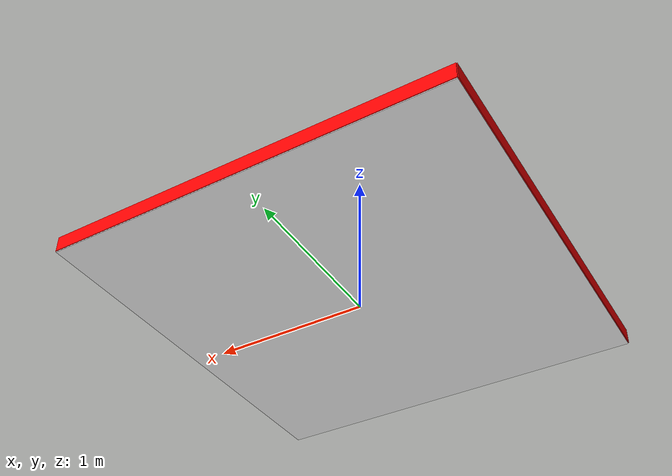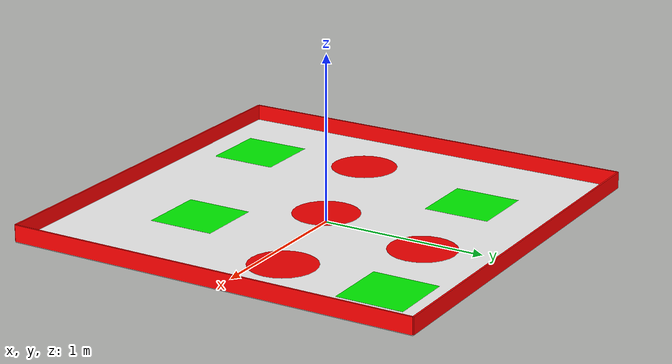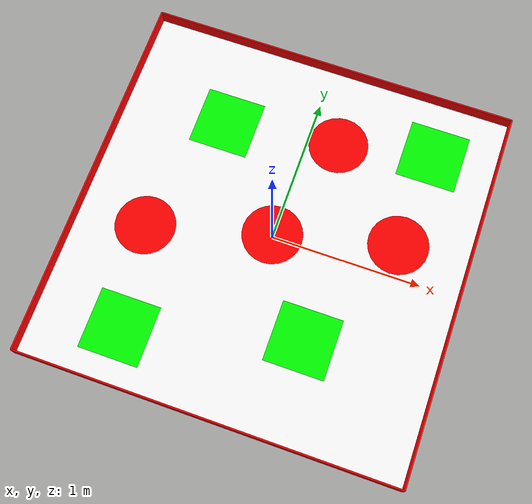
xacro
<?xml version="1.0"?>
<robot name="nav_world"
    xmlns:xacro="http://www.ros.org/wiki/xacro">

    <!-- Define your links and visuals here -->
    <link name="base_link"/>
    <joint name="base__floor" type="fixed">
        <parent link="base_link"/>
        <child link="floor_link"/>
        <origin xyz="0.0 0.0 0.05" rpy="0.0 0.0 0.0"/>
    </joint>

    <link name="floor_link">
        <visual name="">
            <origin xyz="0.0 0.0 0.0" rpy="0.0 0.0 0.0"/>
            <geometry>
                <box size="2.5 2.5 0.01"/>
            </geometry>
            <material name="">
                <color rgba="1.0 1.0 1.0 1.0"/>
            </material>
        </visual>
        <collision>
            <origin xyz="0.0 0.0 0.0" rpy="0.0 0.0 0.0"/>
            <geometry>
                <box size="2.5 2.5 0.01"/>
            </geometry>
        </collision>
        <inertial>
            <mass value="10.0"/>
            <inertia ixx="0.015" iyy="0.0375" izz="0.0375" ixy="0" ixz="0" iyz="0"/>
        </inertial>
    </link>
    <joint name="floor_circle1" type="fixed">
        <parent link="floor_link"/>
        <child link="circle1_link"/>
        <origin xyz="0.0 0.0 0.00499" rpy="0.0 0.0 0.0"/>
    </joint>

    <link name="circle1_link">
        <visual name="">
            <origin xyz="0.0 0.0 0.0" rpy="0.0 0.0 0.0"/>
            <geometry>
                <cylinder radius=".2" length="0.0001"/>
            </geometry>
            <material name="">
                <color rgba="1.0 0.0 0.0 1.0"/>
            </material>
        </visual>
        <collision>
            <origin xyz="0.0 0.0 0.0" rpy="0.0 0.0 0.0"/>
            <geometry>
                <cylinder radius=".2" length="0"/>
            </geometry>
        </collision>
        <inertial>
            <mass value="10.0"/>
            <inertia ixx="0.015" iyy="0.0375" izz="0.0375" ixy="0" ixz="0" iyz="0"/>
        </inertial>
    </link>
    <joint name="floor_circle2" type="fixed">
        <parent link="floor_link"/>
        <child link="circle2_link"/>
        <origin xyz="0.21 0.74 0.00499" rpy="0.0 0.0 0.0"/>
    </joint>

    <link name="circle2_link">
        <visual name="">
            <origin xyz="0.0 0.0 0.0" rpy="0.0 0.0 0.0"/>
            <geometry>
                <cylinder radius=".2" length="0.0001"/>
            </geometry>
            <material name="">
                <color rgba="1.0 0.0 0.0 1.0"/>
            </material>
        </visual>
        <collision>
            <origin xyz="0.0 0.0 0.0" rpy="0.0 0.0 0.0"/>
            <geometry>
                <cylinder radius=".2" length="0"/>
            </geometry>
        </collision>
        <inertial>
            <mass value="10.0"/>
            <inertia ixx="0.015" iyy="0.0375" izz="0.0375" ixy="0" ixz="0" iyz="0"/>
        </inertial>
    </link>
    <joint name="floor_circle3" type="fixed">
        <parent link="floor_link"/>
        <child link="circle3_link"/>
        <origin xyz="0.79 0.2 0.00499" rpy="0.0 0.0 0.0"/>
    </joint>

    <link name="circle3_link">
        <visual name="">
            <origin xyz="0.0 0.0 0.0" rpy="0.0 0.0 0.0"/>
            <geometry>
                <cylinder radius=".2" length="0.0001"/>
            </geometry>
            <material name="">
                <color rgba="1.0 0.0 0.0 1.0"/>
            </material>
        </visual>
        <collision>
            <origin xyz="0.0 0.0 0.0" rpy="0.0 0.0 0.0"/>
            <geometry>
                <cylinder radius=".2" length="0"/>
            </geometry>
        </collision>
        <inertial>
            <mass value="10.0"/>
            <inertia ixx="0.015" iyy="0.0375" izz="0.0375" ixy="0" ixz="0" iyz="0"/>
        </inertial>
    </link>
    <joint name="floor_circle4" type="fixed">
        <parent link="floor_link"/>
        <child link="circle4_link"/>
        <origin xyz="-0.8 -0.21 0.00499" rpy="0.0 0.0 0.0"/>
    </joint>

    <link name="circle4_link">
        <visual name="">
            <origin xyz="0.0 0.0 0.0" rpy="0.0 0.0 0.0"/>
            <geometry>
                <cylinder radius=".2" length="0.0001"/>
            </geometry>
            <material name="">
                <color rgba="1.0 0.0 0.0 1.0"/>
            </material>
            <collision>
                <origin xyz="0.0 0.0 0.0" rpy="0.0 0.0 0.0"/>
                <geometry>
                    <cylinder radius=".2" length="0"/>
                </geometry>
            </collision>
            <inertial>
                <mass value="10.0"/>
                <inertia ixx="0.015" iyy="0.0375" izz="0.0375" ixy="0" ixz="0" iyz="0"/>
            </inertial>
        </visual>
    </link>

    <joint name="floor_square1" type="fixed">
        <parent link="floor_link"/>
        <child link="square1_link"/>
        <origin xyz="-0.55 0.65 0.00499" rpy="0.0 0.0 0.0"/>
    </joint>

    <link name="square1_link">
        <inertial>
            <mass value="10.0"/>
            <inertia ixx="0.015" iyy="0.0375" izz="0.0375" ixy="0" ixz="0" iyz="0"/>
        </inertial>
        <visual name="">
            <origin xyz="0.0 0.0 0.0" rpy="0.0 0.0 0.0"/>
            <geometry>
                <box size="0.4 0.4 0.0001"/>
            </geometry>
            <material name="">
                <color rgba="0.0 1.0 0.0 1.0"/>
            </material>
        </visual>
        <collision>
            <origin xyz="0.0 0.0 0.0" rpy="0.0 0.0 0.0"/>
            <geometry>
                <box size="0.4 0.4 0"/>
            </geometry>
        </collision>
    </link>

    <joint name="floor_square2" type="fixed">
        <parent link="floor_link"/>
        <child link="square2_link"/>
        <origin xyz="0.83 0.87 0.00499" rpy="0.0 0.0 0.0"/>
    </joint>

    <link name="square2_link">
        <inertial>
            <mass value="10.0"/>
            <inertia ixx="0.015" iyy="0.0375" izz="0.0375" ixy="0" ixz="0" iyz="0"/>
        </inertial>
        <visual name="">
            <origin xyz="0.0 0.0 0.0" rpy="0.0 0.0 0.0"/>
            <geometry>
                <box size="0.4 0.4 0.0001"/>
            </geometry>
            <material name="">
                <color rgba="0.0 1.0 0.0 1.0"/>
            </material>
        </visual>
        <collision>
            <origin xyz="0.0 0.0 0.0" rpy="0.0 0.0 0.0"/>
            <geometry>
                <box size="0.4 0.4 0"/>
            </geometry>
        </collision>
    </link>

    <joint name="floor_square3" type="fixed">
        <parent link="floor_link"/>
        <child link="square3_link"/>
        <origin xyz="0.41 -0.59 0.00499" rpy="0.0 0.0 0.0"/>
    </joint>

    <link name="square3_link">
        <inertial>
            <mass value="10.0"/>
            <inertia ixx="0.015" iyy="0.0375" izz="0.0375" ixy="0" ixz="0" iyz="0"/>
        </inertial>
        <visual name="">
            <origin xyz="0.0 0.0 0.0" rpy="0.0 0.0 0.0"/>
            <geometry>
                <box size="0.4 0.4 0.0001"/>
            </geometry>
            <material name="">
                <color rgba="0.0 1.0 0.0 1.0"/>
            </material>
        </visual>
        <collision>
            <origin xyz="0.0 0.0 0.0" rpy="0.0 0.0 0.0"/>
            <geometry>
                <box size="0.4 0.4 0"/>
            </geometry>
        </collision>
    </link>

    <joint name="floor_square4" type="fixed">
        <parent link="floor_link"/>
        <child link="square4_link"/>
        <origin xyz="-0.7 -0.89 0.00499" rpy="0.0 0.0 0.0"/>
    </joint>

    <link name="square4_link">
        <inertial>
            <mass value="10.0"/>
            <inertia ixx="0.015" iyy="0.0375" izz="0.0375" ixy="0" ixz="0" iyz="0"/>
        </inertial>
        <visual name="">
            <origin xyz="0.0 0.0 0.0" rpy="0.0 0.0 0.0"/>
            <geometry>
                <box size="0.4 0.4 0.0001"/>
            </geometry>
            <material name="">
                <color rgba="0.0 1.0 0.0 1.0"/>
            </material>
        </visual>
        <collision>
            <origin xyz="0.0 0.0 0.0" rpy="0.0 0.0 0.0"/>
            <geometry>
                <box size="0.4 0.4 0"/>
            </geometry>
        </collision>
    </link>

    <!-- walls -->

    <joint name="floor_wallx1" type="fixed">
        <parent link="floor_link"/>
        <child link="wall_x1"/>
        <origin xyz="1.25 0.0 0.05" rpy="0.0 0.0 0.0"/>
    </joint>
    <link name="wall_x1">
        <inertial>
            <mass value="10.0"/>
            <inertia ixx="0.015" iyy="0.0375" izz="0.0375" ixy="0" ixz="0" iyz="0"/>
        </inertial>
        <visual name="">
            <origin xyz="0.0 0.0 0.0" rpy="0.0 0.0 0.0"/>
            <geometry>
                <box size="0.01 2.5 0.1"/>
            </geometry>
            <material name="">
                <color rgba="1.0 0.0 0.0 1.0"/>
                <texture filename=""/>
            </material>
        </visual>
        <collision>
            <origin xyz="0.0 0.0 0.0" rpy="0.0 0.0 0.0"/>
            <geometry>
                <box size="0.01 2.5 0.1"/>
            </geometry>
        </collision>
    </link>

    <joint name="floor_wallx2" type="fixed">
        <parent link="floor_link"/>
        <child link="wall_x2"/>
        <origin xyz="-1.25 0.0 0.05" rpy="0.0 0.0 0.0"/>
    </joint>
    <link name="wall_x2">
        <inertial>
            <mass value="10.0"/>
            <inertia ixx="0.015" iyy="0.0375" izz="0.0375" ixy="0" ixz="0" iyz="0"/>
        </inertial>
        <visual name="">
            <origin xyz="0.0 0.0 0.0" rpy="0.0 0.0 0.0"/>
            <geometry>
                <box size="0.01 2.5 0.1"/>
            </geometry>
            <material name="">
                <color rgba="1.0 0.0 0.0 1.0"/>
                <texture filename=""/>
            </material>
        </visual>
        <collision>
            <origin xyz="0.0 0.0 0.0" rpy="0.0 0.0 0.0"/>
            <geometry>
                <box size="0.01 2.5 0.1"/>
            </geometry>
        </collision>
    </link>

    <joint name="floor_wally1" type="fixed">
        <parent link="floor_link"/>
        <child link="wall_y1"/>
        <origin xyz="0.0 1.25 0.05" rpy="0.0 0.0 0.0"/>
    </joint>
    <link name="wall_y1">
        <inertial>
            <mass value="10.0"/>
            <inertia ixx="0.015" iyy="0.0375" izz="0.0375" ixy="0" ixz="0" iyz="0"/>
        </inertial>
        <visual name="">
            <origin xyz="0.0 0.0 0.0" rpy="0.0 0.0 0.0"/>
            <geometry>
                <box size="2.5 0.01 0.1"/>
            </geometry>
            <material name="">
                <color rgba="1.0 0.0 0.0 1.0"/>
                <texture filename=""/>
            </material>
        </visual>
        <collision>
            <origin xyz="0.0 0.0 0.0" rpy="0.0 0.0 0.0"/>
            <geometry>
                <box size="2.5 0.01 0.1"/>
            </geometry>
        </collision>
    </link>

    <joint name="floor_wally2" type="fixed">
        <parent link="floor_link"/>
        <child link="wall_y2"/>
        <origin xyz="0.0 -1.25 0.05" rpy="0.0 0.0 0.0"/>
    </joint>
    <link name="wall_y2">
        <inertial>
            <mass value="10.0"/>
            <inertia ixx="0.015" iyy="0.0375" izz="0.0375" ixy="0" ixz="0" iyz="0"/>
        </inertial>
        <visual name="">
            <origin xyz="0.0 0.0 0.0" rpy="0.0 0.0 0.0"/>
            <geometry>
                <box size="2.5 0.01 0.1"/>
            </geometry>
            <material name="">
                <color rgba="1.0 0.0 0.0 1.0"/>
                <texture filename=""/>
            </material>
        </visual>
        <collision>
            <origin xyz="0.0 0.0 0.0" rpy="0.0 0.0 0.0"/>
            <geometry>
                <box size="2.5 0.01 0.1"/>
            </geometry>
        </collision>
    </link>

    <!-- gazebo tags for every link that has a visual tag -->
    <gazebo reference="floor_link">
        <material>
            Gazebo/White
        </material>
    </gazebo>

    <gazebo reference="circle1_link">
        <material>
            Gazebo/Red
        </material>
    </gazebo>
    <gazebo reference="circle2_link">
        <material>
            Gazebo/Red
        </material>
    </gazebo>
    <gazebo reference="circle3_link">
        <material>
            Gazebo/Red
        </material>
    </gazebo>
    <gazebo reference="circle4_link">
        <material>
            Gazebo/Red
        </material>
    </gazebo>

    <gazebo reference="square1_link">
        <material>
            Gazebo/Green
        </material>
    </gazebo>
    <gazebo reference="square2_link">
        <material>
            Gazebo/Green
        </material>
    </gazebo>
    <gazebo reference="square3_link">
        <material>
            Gazebo/Green
        </material>
    </gazebo>
    <gazebo reference="square4_link">
        <material>
            Gazebo/Green
        </material>
    </gazebo>

    <gazebo reference="wall_x1">
        <material>
            Gazebo/Red
        </material>
    </gazebo>
    <gazebo reference="wall_x2">
        <material>
            Gazebo/Red
        </material>
    </gazebo>
    <gazebo reference="wall_y1">
        <material>
            Gazebo/Red
        </material>
    </gazebo>
    <gazebo reference="wall_y2">
        <material>
            Gazebo/Red
        </material>
    </gazebo>
</robot>
